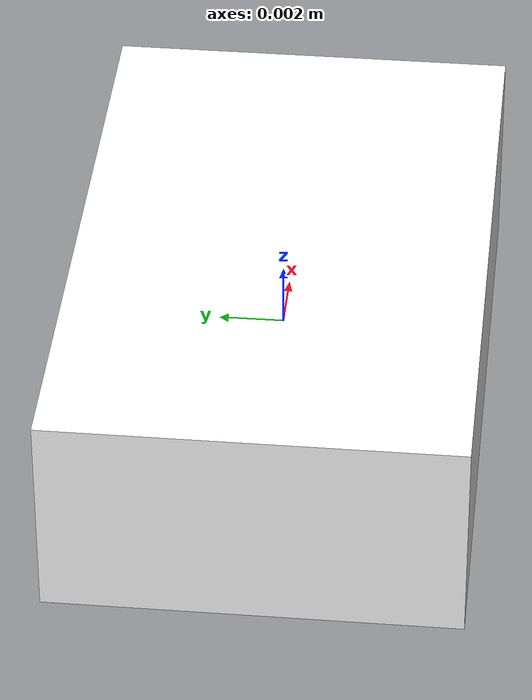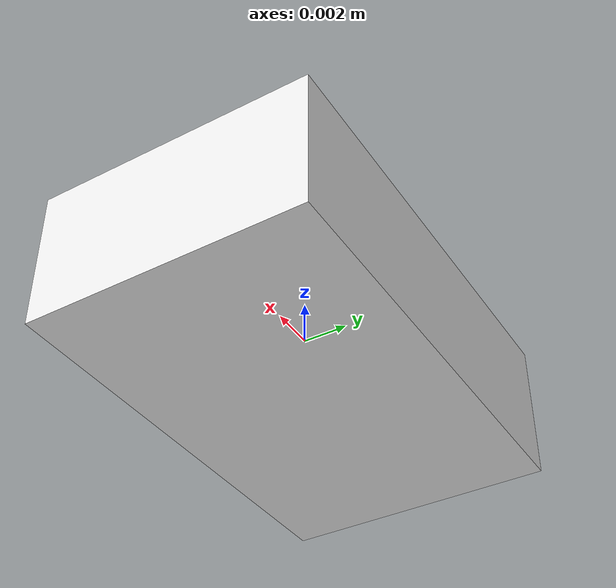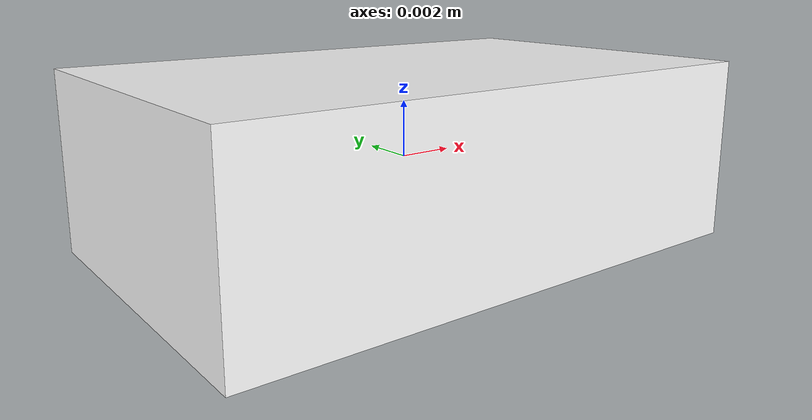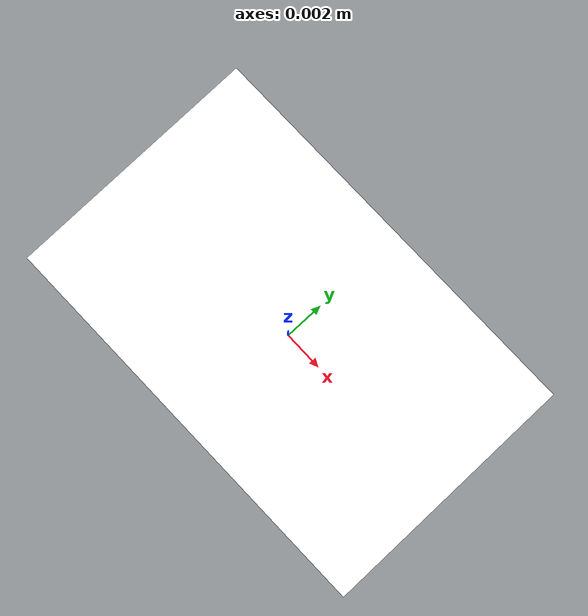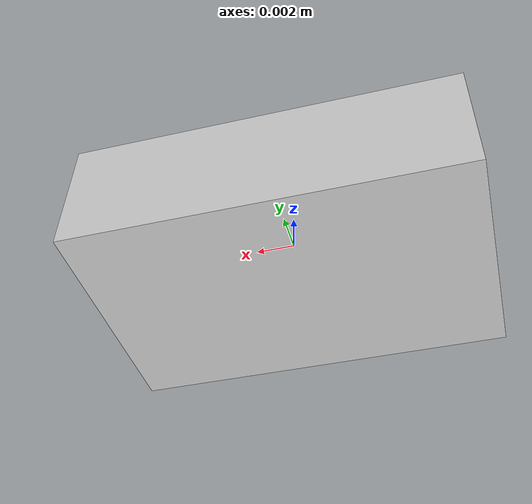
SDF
<?xml version="1.0" ?>
<sdf version="1.6">
  <model name="medicine_bottle">
    <static>false</static>
    <link name="medicine_bottle_link">
      <inertial>
        <mass>0.05</mass>
        <inertia>
          <ixx>1e-5</ixx>
          <ixy>0.0</ixy>
          <ixz>0.0</ixz>
          <iyy>1e-5</iyy>
          <iyz>0.0</iyz>
          <izz>1e-5</izz>
        </inertia>
      </inertial>

      <visual name="visual">
        <geometry>
          <mesh>
            <uri>model://medicine_bottle/meshes/box_model.dae</uri>
            <scale>0.1 0.1 0.1</scale>
          </mesh>
        </geometry>
      </visual>

      <collision name="collision">
        <geometry>
          <mesh>
            <uri>model://medicine_bottle/meshes/box_model.dae</uri>
            <scale>0.1 0.1 0.1</scale>
          </mesh>
        </geometry>
      </collision>
    </link>
  </model>
</sdf>
